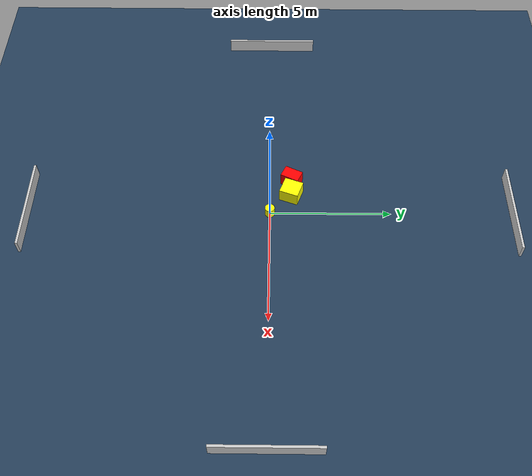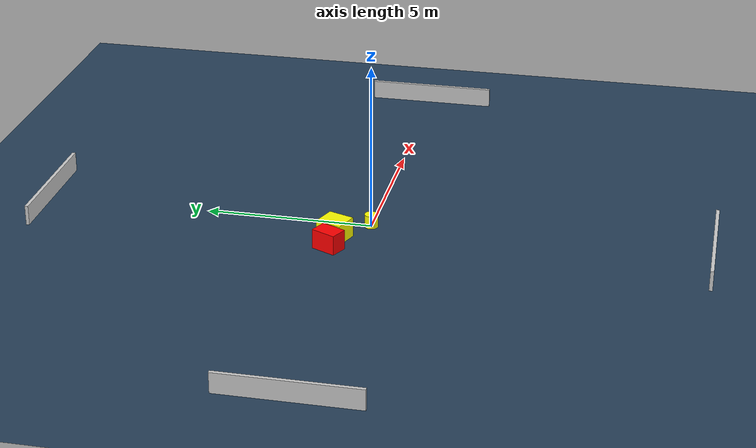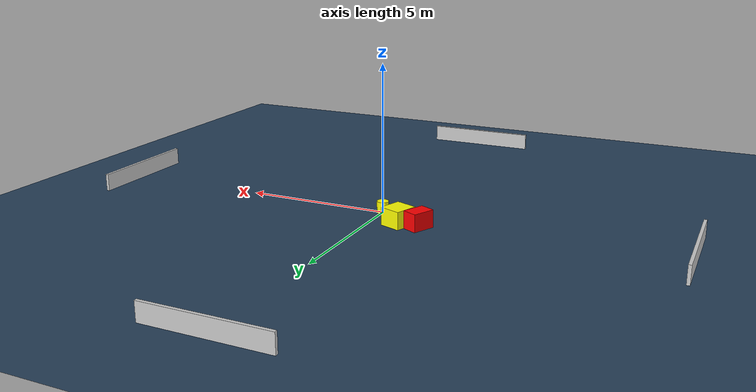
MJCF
<?xml version="1.0" ?>
<mujoco model="generated_environment">
  <option timestep="0.01" integrator="RK4" cone="elliptic"/>
  <default>
    <geom density="1"/>
  </default>
  <asset>
    <texture builtin="gradient" height="3072" name="skybox" rgb1="0.3 0.5 0.7" rgb2="0 0 0" type="skybox" width="512"/>
    <texture builtin="checker" height="300" name="groundplane" rgb1="0.2 0.3 0.4" rgb2="0.1 0.2 0.3" type="2d" width="300"/>
    <material name="groundplane" reflectance="0.2" texrepeat="5 5" texture="groundplane"/>
  </asset>
  <worldbody>
    <light dir="0 0 -1" directional="true" pos="0 0 1.5"/>
    <geom condim="3" friction="0.5 0.005 0.001" material="groundplane" name="floor" pos="0 0 0" size="0 0 0.05" type="plane"/>
    <body name="walls">
      <geom name="wall_1" condim="4" pos="-10.0 0.0 0.3" rgba="0.800000011920929 0.800000011920929 0.800000011920929 1.0" size="0.05 2.0 0.3" type="box"/>
      <geom name="wall_2" condim="4" pos="10.0 0.0 0.3" rgba="0.800000011920929 0.800000011920929 0.800000011920929 1.0" size="0.05 2.0 0.3" type="box"/>
      <geom name="wall_3" condim="4" pos="0.0 -10.0 0.3" rgba="0.800000011920929 0.800000011920929 0.800000011920929 1.0" size="2.0 0.05 0.3" type="box"/>
      <geom name="wall_4" condim="4" pos="0.0 10.0 0.3" rgba="0.800000011920929 0.800000011920929 0.800000011920929 1.0" size="2.0 0.05 0.3" type="box"/>
    </body>
    <body name="robot">
      <joint name="joint_x" type="slide" pos="0 0 0" axis="1 0 0"/>
      <joint name="joint_y" type="slide" pos="0 0 0" axis="0 1 0"/>
      <geom name="robot" type="cylinder" pos="0.0 0.0 0.2" size="0.2 0.2 0.0" mass="5.0" friction="1.0 0.005 0.0001" condim="4" rgba="1.0 1.0 0.0 1.0"/>
    </body>
    <body name="obstacle_1_movable">
      <geom name="obstacle_1_movable" condim="4" pos="-0.9482854454987762 0.8920786529845128 0.3" euler="0 0 159.86968521152488" friction="0.0 0.005 0.001" rgba="1.0 1.0 0.0 1.0" size="0.37188415595012037 0.397289898468446 0.3" type="box" mass="0.1"/>
      <joint type="free"/>
    </body>
    <body name="obstacle_2_static">
      <geom name="obstacle_2_static" condim="4" pos="-1.6668406418358876 0.9110265637249352 0.3" euler="0 0 154.21561887247412" friction="0.0 0.005 0.001" rgba="1.0 0.0 0.0 1.0" size="0.2633039752572096 0.3895502464954139 0.3" type="box"/>
    </body>
  </worldbody>
  <actuator>
    <motor name="actuator_x" joint="joint_x" gear="1" ctrlrange="-1 1"/>
    <motor name="actuator_y" joint="joint_y" gear="1" ctrlrange="-1 1"/>
  </actuator>
</mujoco>
